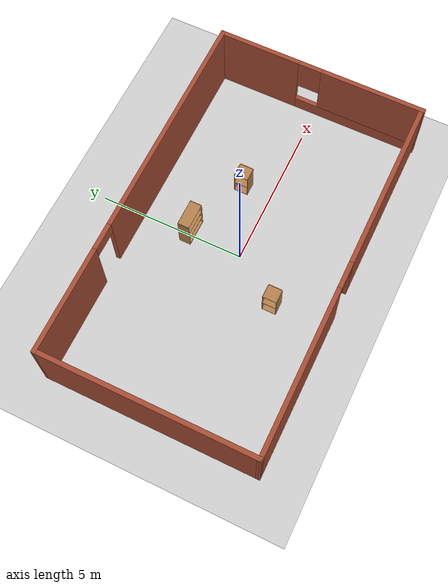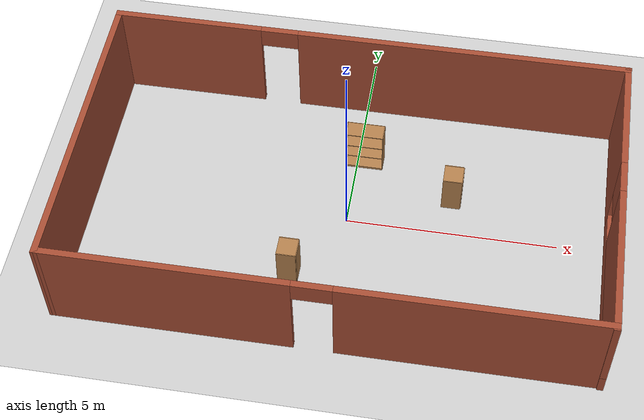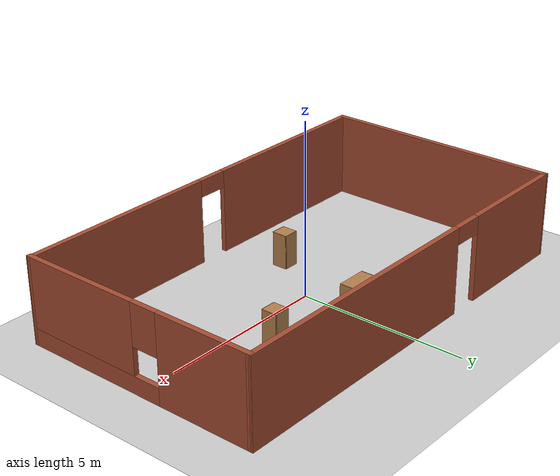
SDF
<sdf version="1.7">
 <world name="default">
  <light name="sun" type="directional">
   <pose>0 0 10 0 -0 0</pose>
   <diffuse>0.8 0.8 0.8 1</diffuse>
   <specular>0.2 0.2 0.2 1</specular>
   <attenuation>
    <range>1000</range>
    <constant>0.9</constant>
    <linear>0.01</linear>
    <quadratic>0.001</quadratic>
   </attenuation>
   <direction>-0.5 0.1 -0.9</direction>
   <spot><inner_angle>0</inner_angle><outer_angle>0</outer_angle><falloff>0</falloff></spot>
  </light>
  <model name="ground_plane">
   <static>1</static>
   <link name="link">
    <collision name="collision">
     <geometry><plane><normal>0 0 1</normal><size>100 100</size></plane></geometry>
     <surface><friction><ode><mu>100</mu><mu2>50</mu2></ode></friction></surface>
    </collision>
    <visual name="visual">
     <cast_shadows>0</cast_shadows>
     <geometry><plane><normal>0 0 1</normal><size>100 100</size></plane></geometry>
     <material>
      <script><uri>file://media/materials/scripts/gazebo.material</uri><name>Gazebo/Grey</name></script>
     </material>
    </visual>
   </link>
  </model>
  <gravity>0 0 -9.8</gravity>
  <magnetic_field>6e-06 2.3e-05 -4.2e-05</magnetic_field>
  <atmosphere type="adiabatic"/>
  <physics type="ode">
   <max_step_size>0.001</max_step_size>
   <real_time_factor>1</real_time_factor>
   <real_time_update_rate>1000</real_time_update_rate>
  </physics>
  <scene><ambient>0.4 0.4 0.4 1</ambient><background>0.7 0.7 0.7 1</background><shadows>1</shadows></scene>
  <audio><device>default</device></audio>
  <spherical_coordinates>
   <surface_model>EARTH_WGS84</surface_model>
   <latitude_deg>0</latitude_deg>
   <longitude_deg>0</longitude_deg>
   <elevation>0</elevation>
   <heading_deg>0</heading_deg>
  </spherical_coordinates>
  <model name="cabinet">
   <static>1</static>
   <link name="cabinet_bottom_plate">
    <inertial>
     <pose>0 0 -1 0 -0 0</pose>
     <inertia><ixx>2.05</ixx><ixy>0</ixy><ixz>0</ixz><iyy>2.05</iyy><iyz>0</iyz><izz>2.05</izz></inertia>
     <mass>25</mass>
    </inertial>
    <collision name="cabinet_bottom_plate_geom">
     <pose>0 0 0.01 0 -0 0</pose>
     <geometry><box><size>0.45 0.45 0.02</size></box></geometry>
    </collision>
    <visual name="cabinet_bottom_plate_geom_visual">
     <pose>0 0 0.01 0 -0 0</pose>
     <geometry><box><size>0.45 0.45 0.02</size></box></geometry>
     <material>
      <script><uri>file://media/materials/scripts/gazebo.material</uri><name>Gazebo/Wood</name></script>
     </material>
    </visual>
    <collision name="cabinet_bottom_plate_geom_cabinet_back_plate">
     <pose>0.235 0 0.51 0 -0 0</pose>
     <geometry><box><size>0.02 0.45 1.02</size></box></geometry>
    </collision>
    <visual name="cabinet_bottom_plate_geom_cabinet_back_plate_visual">
     <pose>0.235 0 0.51 0 -0 0</pose>
     <geometry><box><size>0.02 0.45 1.02</size></box></geometry>
     <material>
      <script><uri>file://media/materials/scripts/gazebo.material</uri><name>Gazebo/Wood</name></script>
     </material>
    </visual>
    <collision name="cabinet_bottom_plate_geom_cabinet_left_plate">
     <pose>0 0.235 0.51 0 -0 0</pose>
     <geometry><box><size>0.45 0.02 1.02</size></box></geometry>
    </collision>
    <visual name="cabinet_bottom_plate_geom_cabinet_left_plate_visual">
     <pose>0 0.235 0.51 0 -0 0</pose>
     <geometry><box><size>0.45 0.02 1.02</size></box></geometry>
     <material>
      <script><uri>file://media/materials/scripts/gazebo.material</uri><name>Gazebo/Wood</name></script>
     </material>
    </visual>
    <collision name="cabinet_bottom_plate_geom_cabinet_middle_plate">
     <pose>0 0 0.51 0 -0 0</pose>
     <geometry><box><size>0.45 0.45 0.02</size></box></geometry>
    </collision>
    <visual name="cabinet_bottom_plate_geom_cabinet_middle_plate_visual">
     <pose>0 0 0.51 0 -0 0</pose>
     <geometry><box><size>0.45 0.45 0.02</size></box></geometry>
     <material>
      <script><uri>file://media/materials/scripts/gazebo.material</uri><name>Gazebo/Wood</name></script>
     </material>
    </visual>
    <collision name="cabinet_bottom_plate_geom_cabinet_right_plate">
     <pose>0 -0.235 0.51 0 -0 0</pose>
     <geometry><box><size>0.45 0.02 1.02</size></box></geometry>
    </collision>
    <visual name="cabinet_bottom_plate_geom_cabinet_right_plate_visual">
     <pose>0 -0.235 0.51 0 -0 0</pose>
     <geometry><box><size>0.45 0.02 1.02</size></box></geometry>
     <material>
      <script><uri>file://media/materials/scripts/gazebo.material</uri><name>Gazebo/Wood</name></script>
     </material>
    </visual>
    <collision name="cabinet_bottom_plate_geom_cabinet_top_plate">
     <pose>0 0 1.01 0 -0 0</pose>
     <geometry><box><size>0.45 0.45 0.02</size></box></geometry>
    </collision>
    <visual name="cabinet_bottom_plate_geom_cabinet_top_plate_visual">
     <pose>0 0 1.01 0 -0 0</pose>
     <geometry><box><size>0.45 0.45 0.02</size></box></geometry>
     <material>
      <script><uri>file://media/materials/scripts/gazebo.material</uri><name>Gazebo/Wood</name></script>
     </material>
    </visual>
   </link>
   <pose>-1.0957 -1.64226 0 0 -0 0</pose>
  </model>
  <model name="cabinet_0">
   <static>1</static>
   <link name="cabinet_bottom_plate">
    <inertial>
     <pose>0 0 -1 0 -0 0</pose>
     <inertia><ixx>2.05</ixx><ixy>0</ixy><ixz>0</ixz><iyy>2.05</iyy><iyz>0</iyz><izz>2.05</izz></inertia>
     <mass>25</mass>
    </inertial>
    <collision name="cabinet_bottom_plate_geom">
     <pose>0 0 0.01 0 -0 0</pose>
     <geometry><box><size>0.45 0.45 0.02</size></box></geometry>
    </collision>
    <visual name="cabinet_bottom_plate_geom_visual">
     <pose>0 0 0.01 0 -0 0</pose>
     <geometry><box><size>0.45 0.45 0.02</size></box></geometry>
     <material>
      <script><uri>file://media/materials/scripts/gazebo.material</uri><name>Gazebo/Wood</name></script>
     </material>
    </visual>
    <collision name="cabinet_bottom_plate_geom_cabinet_back_plate">
     <pose>0.235 0 0.51 0 -0 0</pose>
     <geometry><box><size>0.02 0.45 1.02</size></box></geometry>
    </collision>
    <visual name="cabinet_bottom_plate_geom_cabinet_back_plate_visual">
     <pose>0.235 0 0.51 0 -0 0</pose>
     <geometry><box><size>0.02 0.45 1.02</size></box></geometry>
     <material>
      <script><uri>file://media/materials/scripts/gazebo.material</uri><name>Gazebo/Wood</name></script>
     </material>
    </visual>
    <collision name="cabinet_bottom_plate_geom_cabinet_left_plate">
     <pose>0 0.235 0.51 0 -0 0</pose>
     <geometry><box><size>0.45 0.02 1.02</size></box></geometry>
    </collision>
    <visual name="cabinet_bottom_plate_geom_cabinet_left_plate_visual">
     <pose>0 0.235 0.51 0 -0 0</pose>
     <geometry><box><size>0.45 0.02 1.02</size></box></geometry>
     <material>
      <script><uri>file://media/materials/scripts/gazebo.material</uri><name>Gazebo/Wood</name></script>
     </material>
    </visual>
    <collision name="cabinet_bottom_plate_geom_cabinet_middle_plate">
     <pose>0 0 0.51 0 -0 0</pose>
     <geometry><box><size>0.45 0.45 0.02</size></box></geometry>
    </collision>
    <visual name="cabinet_bottom_plate_geom_cabinet_middle_plate_visual">
     <pose>0 0 0.51 0 -0 0</pose>
     <geometry><box><size>0.45 0.45 0.02</size></box></geometry>
     <material>
      <script><uri>file://media/materials/scripts/gazebo.material</uri><name>Gazebo/Wood</name></script>
     </material>
    </visual>
    <collision name="cabinet_bottom_plate_geom_cabinet_right_plate">
     <pose>0 -0.235 0.51 0 -0 0</pose>
     <geometry><box><size>0.45 0.02 1.02</size></box></geometry>
    </collision>
    <visual name="cabinet_bottom_plate_geom_cabinet_right_plate_visual">
     <pose>0 -0.235 0.51 0 -0 0</pose>
     <geometry><box><size>0.45 0.02 1.02</size></box></geometry>
     <material>
      <script><uri>file://media/materials/scripts/gazebo.material</uri><name>Gazebo/Wood</name></script>
     </material>
    </visual>
    <collision name="cabinet_bottom_plate_geom_cabinet_top_plate">
     <pose>0 0 1.01 0 -0 0</pose>
     <geometry><box><size>0.45 0.45 0.02</size></box></geometry>
    </collision>
    <visual name="cabinet_bottom_plate_geom_cabinet_top_plate_visual">
     <pose>0 0 1.01 0 -0 0</pose>
     <geometry><box><size>0.45 0.45 0.02</size></box></geometry>
     <material>
      <script><uri>file://media/materials/scripts/gazebo.material</uri><name>Gazebo/Wood</name></script>
     </material>
    </visual>
   </link>
   <pose>2.39726 1.00151 0 0 -0 0</pose>
  </model>
  <model name="bookshelf">
   <static>1</static>
   <link name="link">
    <inertial><mass>1</mass></inertial>
    <collision name="back">
     <pose>0 0.005 0.6 0 -0 0</pose>
     <geometry><box><size>0.9 0.01 1.2</size></box></geometry>
    </collision>
    <visual name="visual1">
     <pose>0 0.005 0.6 0 -0 0</pose>
     <geometry><box><size>0.9 0.01 1.2</size></box></geometry>
     <material>
      <script><uri>file://media/materials/scripts/gazebo.material</uri><name>Gazebo/Wood</name></script>
     </material>
    </visual>
    <collision name="left_side">
     <pose>0.45 -0.195 0.6 0 -0 0</pose>
     <geometry><box><size>0.02 0.4 1.2</size></box></geometry>
    </collision>
    <visual name="visual2">
     <pose>0.45 -0.195 0.6 0 -0 0</pose>
     <geometry><box><size>0.02 0.4 1.2</size></box></geometry>
     <material>
      <script><uri>file://media/materials/scripts/gazebo.material</uri><name>Gazebo/Wood</name></script>
     </material>
    </visual>
    <collision name="right_side">
     <pose>-0.45 -0.195 0.6 0 -0 0</pose>
     <geometry><box><size>0.02 0.4 1.2</size></box></geometry>
    </collision>
    <visual name="visual3">
     <pose>-0.45 -0.195 0.6 0 -0 0</pose>
     <geometry><box><size>0.02 0.4 1.2</size></box></geometry>
     <material>
      <script><uri>file://media/materials/scripts/gazebo.material</uri><name>Gazebo/Wood</name></script>
     </material>
    </visual>
    <collision name="bottom">
     <pose>0 -0.195 0.03 0 -0 0</pose>
     <geometry><box><size>0.88 0.4 0.06</size></box></geometry>
    </collision>
    <visual name="visual4">
     <pose>0 -0.195 0.03 0 -0 0</pose>
     <geometry><box><size>0.88 0.4 0.06</size></box></geometry>
     <material>
      <script><uri>file://media/materials/scripts/gazebo.material</uri><name>Gazebo/Wood</name></script>
     </material>
    </visual>
    <collision name="top">
     <pose>0 -0.195 1.19 0 -0 0</pose>
     <geometry><box><size>0.88 0.4 0.02</size></box></geometry>
    </collision>
    <visual name="visual5">
     <pose>0 -0.195 1.19 0 -0 0</pose>
     <geometry><box><size>0.88 0.4 0.02</size></box></geometry>
     <material>
      <script><uri>file://media/materials/scripts/gazebo.material</uri><name>Gazebo/Wood</name></script>
     </material>
    </visual>
    <collision name="low_shelf">
     <pose>0 -0.195 0.43 0 -0 0</pose>
     <geometry><box><size>0.88 0.4 0.02</size></box></geometry>
    </collision>
    <visual name="visual6">
     <pose>0 -0.195 0.43 0 -0 0</pose>
     <geometry><box><size>0.88 0.4 0.02</size></box></geometry>
     <material>
      <script><uri>file://media/materials/scripts/gazebo.material</uri><name>Gazebo/Wood</name></script>
     </material>
    </visual>
    <collision name="high_shelf">
     <pose>0 -0.195 0.8 0 -0 0</pose>
     <geometry><box><size>0.88 0.4 0.02</size></box></geometry>
    </collision>
    <visual name="visual7">
     <pose>0 -0.195 0.8 0 -0 0</pose>
     <geometry><box><size>0.88 0.4 0.02</size></box></geometry>
     <material>
      <script><uri>file://media/materials/scripts/gazebo.material</uri><name>Gazebo/Wood</name></script>
     </material>
    </visual>
   </link>
   <pose>0.167825 2.04609 0 0 -0 0</pose>
  </model>
  <model name="test">
   <pose>0.001263 0.004451 0 0 -0 0</pose>
   <link name="Wall_2">
    <collision name="Wall_2_Collision">
     <geometry><box><size>7.25 0.15 2.5</size></box></geometry>
     <pose>0 0 1.25 0 -0 0</pose>
    </collision>
    <visual name="Wall_2_Visual">
     <pose>0 0 1.25 0 -0 0</pose>
     <geometry><box><size>7.25 0.15 2.5</size></box></geometry>
     <material>
      <script><uri>file://media/materials/scripts/gazebo.material</uri><name>Gazebo/Bricks</name></script>
      <ambient>1 1 1 1</ambient>
     </material>
     <meta><layer>0</layer></meta>
    </visual>
    <pose>-6.15784 -0.01759 0 0 -0 1.5708</pose>
   </link>
   <link name="Wall_4">
    <pose>0 3.55 0 0 -0 0.002856</pose>
    <visual name="Wall_4_Visual_0">
     <pose>-4.43355 0 1.25 0 -0 0</pose>
     <geometry><box><size>3.59865 0.15 2.5</size></box></geometry>
     <material>
      <script><uri>file://media/materials/scripts/gazebo.material</uri><name>Gazebo/Bricks</name></script>
      <ambient>1 1 1 1</ambient>
     </material>
     <meta><layer>0</layer></meta>
    </visual>
    <collision name="Wall_4_Collision_0">
     <geometry><box><size>3.59865 0.15 2.5</size></box></geometry>
     <pose>-4.43355 0 1.25 0 -0 0</pose>
    </collision>
    <visual name="Wall_4_Visual_1">
     <pose>2.24932 0 1.25 0 -0 0</pose>
     <geometry><box><size>7.96709 0.15 2.5</size></box></geometry>
     <material>
      <script><uri>file://media/materials/scripts/gazebo.material</uri><name>Gazebo/Bricks</name></script>
      <ambient>1 1 1 1</ambient>
     </material>
     <meta><layer>0</layer></meta>
    </visual>
    <collision name="Wall_4_Collision_1">
     <geometry><box><size>7.96709 0.15 2.5</size></box></geometry>
     <pose>2.24932 0 1.25 0 -0 0</pose>
    </collision>
    <visual name="Wall_4_Visual_2">
     <pose>-2.18422 0 2.25 0 -0 0</pose>
     <geometry><box><size>0.9 0.15 0.5</size></box></geometry>
     <material>
      <script><uri>file://media/materials/scripts/gazebo.material</uri><name>Gazebo/Bricks</name></script>
      <ambient>1 1 1 1</ambient>
     </material>
     <meta><layer>0</layer></meta>
    </visual>
    <collision name="Wall_4_Collision_2">
     <geometry><box><size>0.9 0.15 0.5</size></box></geometry>
     <pose>-2.18422 0 2.25 0 -0 0</pose>
    </collision>
   </link>
   <link name="Wall_5">
    <pose>6.15784 -0.01759 0 0 -0 -1.5708</pose>
    <visual name="Wall_5_Visual_0">
     <pose>-2.20353 0 1.25 0 -0 0</pose>
     <geometry><box><size>2.84294 0.15 2.5</size></box></geometry>
     <material>
      <script><uri>file://media/materials/scripts/gazebo.material</uri><name>Gazebo/Bricks</name></script>
      <ambient>1 1 1 1</ambient>
     </material>
     <meta><layer>0</layer></meta>
    </visual>
    <collision name="Wall_5_Collision_0">
     <geometry><box><size>2.84294 0.15 2.5</size></box></geometry>
     <pose>-2.20353 0 1.25 0 -0 0</pose>
    </collision>
    <visual name="Wall_5_Visual_1">
     <pose>1.42147 0 0.25 0 -0 0</pose>
     <geometry><box><size>4.40706 0.15 0.5</size></box></geometry>
     <material>
      <script><uri>file://media/materials/scripts/gazebo.material</uri><name>Gazebo/Bricks</name></script>
      <ambient>1 1 1 1</ambient>
     </material>
     <meta><layer>0</layer></meta>
    </visual>
    <collision name="Wall_5_Collision_1">
     <geometry><box><size>4.40706 0.15 0.5</size></box></geometry>
     <pose>1.42147 0 0.25 0 -0 0</pose>
    </collision>
    <visual name="Wall_5_Visual_2">
     <pose>1.82147 0 1.5 0 -0 0</pose>
     <geometry><box><size>3.60706 0.15 2</size></box></geometry>
     <material>
      <script><uri>file://media/materials/scripts/gazebo.material</uri><name>Gazebo/Bricks</name></script>
      <ambient>1 1 1 1</ambient>
     </material>
     <meta><layer>0</layer></meta>
    </visual>
    <collision name="Wall_5_Collision_2">
     <geometry><box><size>3.60706 0.15 2</size></box></geometry>
     <pose>1.82147 0 1.5 0 -0 0</pose>
    </collision>
    <visual name="Wall_5_Visual_3">
     <pose>-0.38206 0 1.9 0 -0 0</pose>
     <geometry><box><size>0.8 0.15 1.2</size></box></geometry>
     <material>
      <script><uri>file://media/materials/scripts/gazebo.material</uri><name>Gazebo/Bricks</name></script>
      <ambient>1 1 1 1</ambient>
     </material>
     <meta><layer>0</layer></meta>
    </visual>
    <collision name="Wall_5_Collision_3">
     <geometry><box><size>0.8 0.15 1.2</size></box></geometry>
     <pose>-0.38206 0 1.9 0 -0 0</pose>
    </collision>
   </link>
   <link name="Wall_7">
    <pose>0 -3.55 0 0 -0 -3.13874</pose>
    <visual name="Wall_7_Visual_0">
     <pose>-3.25196 0 1.25 0 -0 0</pose>
     <geometry><box><size>5.96183 0.15 2.5</size></box></geometry>
     <material>
      <script><uri>file://media/materials/scripts/gazebo.material</uri><name>Gazebo/Bricks</name></script>
      <ambient>1 1 1 1</ambient>
     </material>
     <meta><layer>0</layer></meta>
    </visual>
    <collision name="Wall_7_Collision_0">
     <geometry><box><size>5.96183 0.15 2.5</size></box></geometry>
     <pose>-3.25196 0 1.25 0 -0 0</pose>
    </collision>
    <visual name="Wall_7_Visual_1">
     <pose>3.43091 0 1.25 0 -0 0</pose>
     <geometry><box><size>5.60391 0.15 2.5</size></box></geometry>
     <material>
      <script><uri>file://media/materials/scripts/gazebo.material</uri><name>Gazebo/Bricks</name></script>
      <ambient>1 1 1 1</ambient>
     </material>
     <meta><layer>0</layer></meta>
    </visual>
    <collision name="Wall_7_Collision_1">
     <geometry><box><size>5.60391 0.15 2.5</size></box></geometry>
     <pose>3.43091 0 1.25 0 -0 0</pose>
    </collision>
    <visual name="Wall_7_Visual_2">
     <pose>0.178957 0 2.25 0 -0 0</pose>
     <geometry><box><size>0.9 0.15 0.5</size></box></geometry>
     <material>
      <script><uri>file://media/materials/scripts/gazebo.material</uri><name>Gazebo/Bricks</name></script>
      <ambient>1 1 1 1</ambient>
     </material>
     <meta><layer>0</layer></meta>
    </visual>
    <collision name="Wall_7_Collision_2">
     <geometry><box><size>0.9 0.15 0.5</size></box></geometry>
     <pose>0.178957 0 2.25 0 -0 0</pose>
    </collision>
   </link>
   <static>1</static>
  </model>
 </world>
</sdf>
